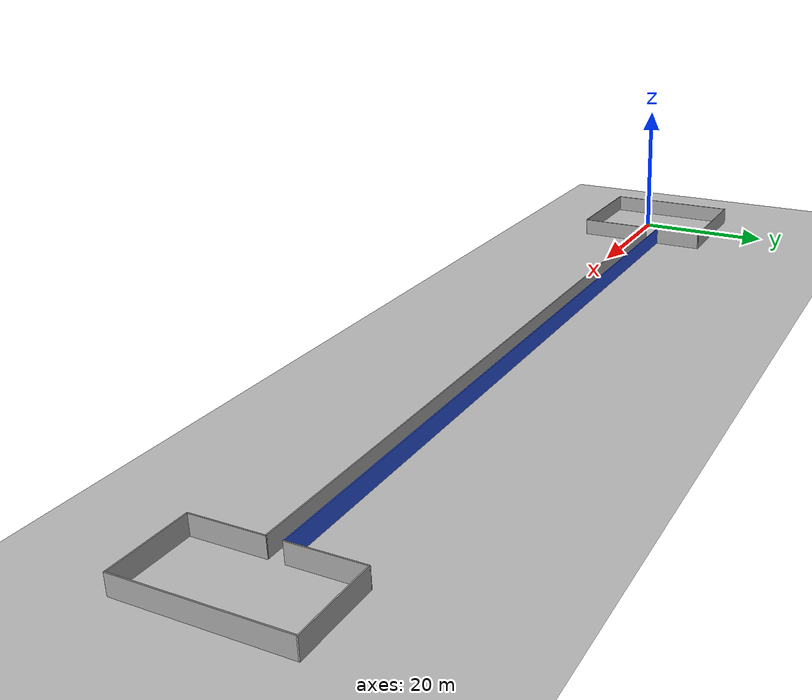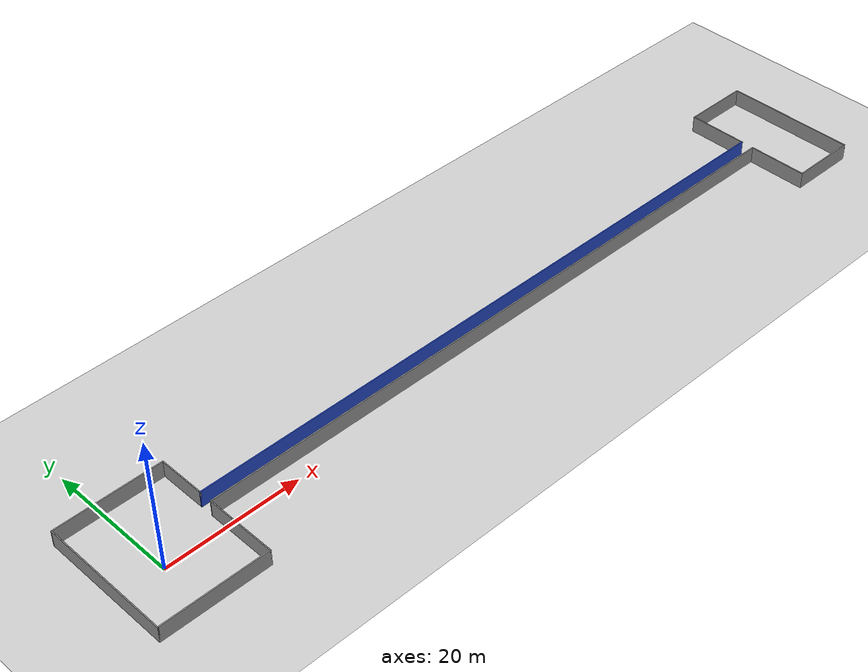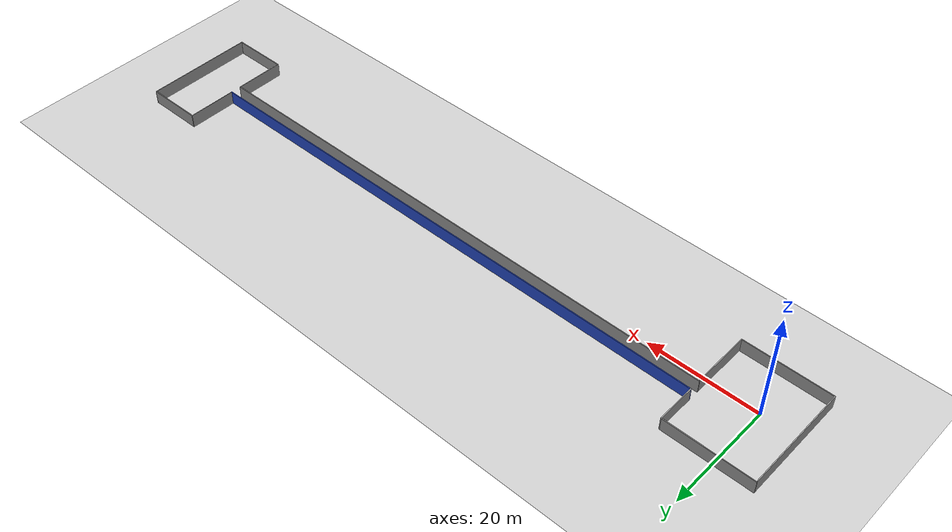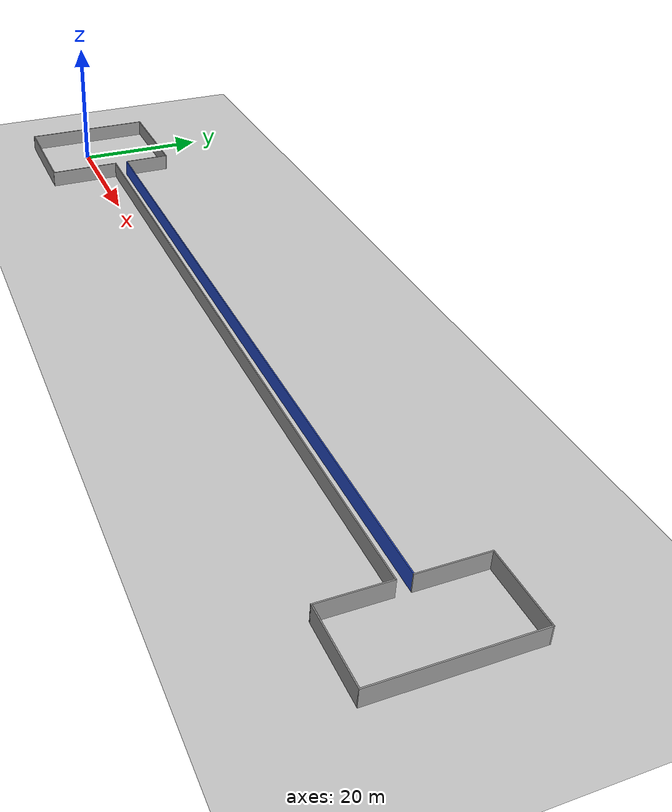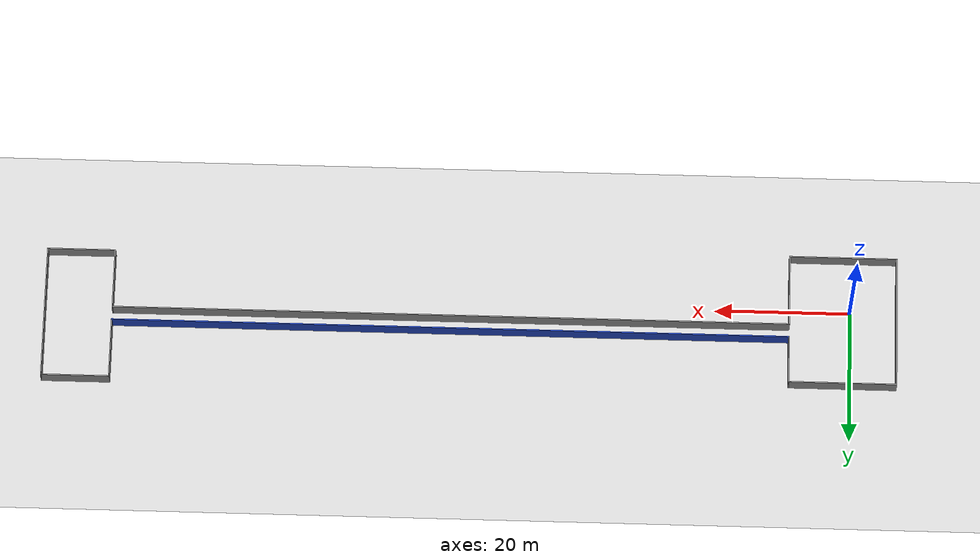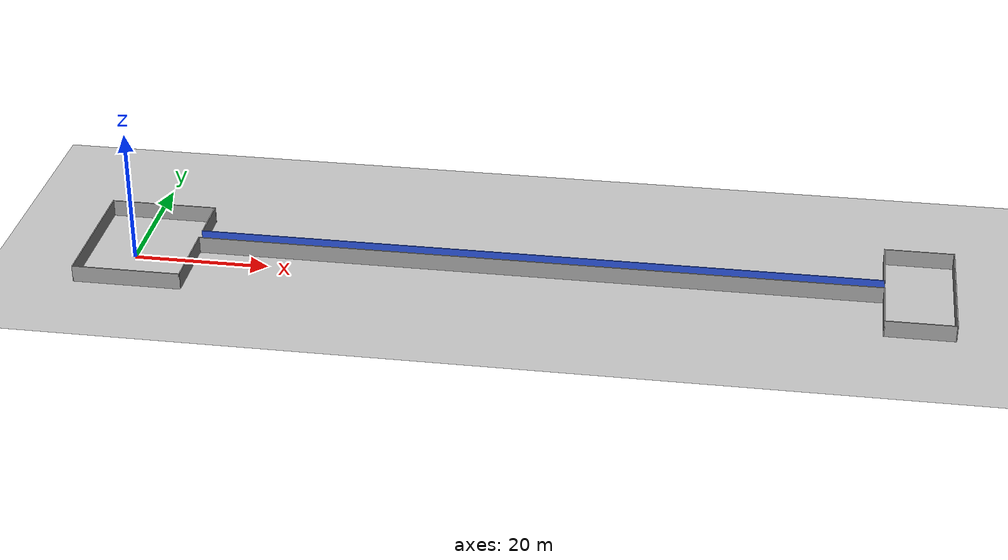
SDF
<sdf version="1.6">
 <world name="default">
  <light name="sun" type="directional">
   <pose>0 0 10 0 -0 0</pose>
   <diffuse>0.8 0.8 0.8 1</diffuse>
   <specular>0.2 0.2 0.2 1</specular>
   <attenuation>
    <range>1000</range>
    <constant>0.9</constant>
    <linear>0.01</linear>
    <quadratic>0.001</quadratic>
   </attenuation>
   <direction>-0.5 0.1 -0.9</direction>
  </light>
  <model name="ground_plane">
   <static>1</static>
   <link name="link">
    <collision name="collision">
     <geometry><plane><normal>0 0 1</normal><size>300 300</size></plane></geometry>
     <surface><friction><ode><mu>100</mu><mu2>50</mu2></ode></friction></surface>
    </collision>
    <visual name="visual">
     <cast_shadows>0</cast_shadows>
     <geometry><plane><normal>0 0 1</normal><size>300 300</size></plane></geometry>
     <material>
      <script><uri>file://media/materials/scripts/gazebo.material</uri><name>Gazebo/Grey</name></script>
     </material>
    </visual>
   </link>
  </model>
  <gravity>0 0 -9.8</gravity>
  <magnetic_field>6e-06 2.3e-05 -4.2e-05</magnetic_field>
  <atmosphere type="adiabatic"/>
  <physics name="default_physics" default="0" type="ode">
   <max_step_size>0.001</max_step_size>
   <real_time_factor>1</real_time_factor>
   <real_time_update_rate>1000</real_time_update_rate>
  </physics>
  <scene><ambient>0.4 0.4 0.4 1</ambient><background>0.7 0.7 0.7 1</background><shadows>1</shadows></scene>
  <spherical_coordinates>
   <surface_model>EARTH_WGS84</surface_model>
   <latitude_deg>0</latitude_deg>
   <longitude_deg>0</longitude_deg>
   <elevation>0</elevation>
   <heading_deg>0</heading_deg>
  </spherical_coordinates>
  <model name="Untitled">
   <pose>56.1162 2.80542 0 0 -0 0</pose>
   <link name="Wall_0">
    <collision name="Wall_0_Collision">
     <geometry><box><size>100.15 0.15 2.5</size></box></geometry>
     <pose>0 0 1.25 0 -0 0</pose>
    </collision>
    <visual name="Wall_0_Visual">
     <pose>0 0 1.25 0 -0 0</pose>
     <geometry><box><size>100.15 0.15 2.5</size></box></geometry>
     <material>
      <script><uri>file://media/materials/scripts/gazebo.material</uri><name>Gazebo/Blue</name></script>
      <ambient>1 1 1 1</ambient>
     </material>
     <meta><layer>0</layer></meta>
    </visual>
    <pose>2.925 1.875 0 0 -0 0</pose>
   </link>
   <link name="Wall_11">
    <collision name="Wall_11_Collision">
     <geometry><box><size>9.15 0.15 2.5</size></box></geometry>
     <pose>0 0 1.25 0 -0 0</pose>
    </collision>
    <visual name="Wall_11_Visual">
     <pose>0 0 1.25 0 -0 0</pose>
     <geometry><box><size>9.15 0.15 2.5</size></box></geometry>
     <material>
      <script><uri>file://media/materials/scripts/gazebo.material</uri><name>Gazebo/Grey</name></script>
      <ambient>1 1 1 1</ambient>
     </material>
     <meta><layer>0</layer></meta>
    </visual>
    <pose>52.925 6.375 0 0 -0 1.5708</pose>
   </link>
   <link name="Wall_13">
    <collision name="Wall_13_Collision">
     <geometry><box><size>9.15 0.15 2.5</size></box></geometry>
     <pose>0 0 1.25 0 -0 0</pose>
    </collision>
    <visual name="Wall_13_Visual">
     <pose>0 0 1.25 0 -0 0</pose>
     <geometry><box><size>9.15 0.15 2.5</size></box></geometry>
     <material>
      <script><uri>file://media/materials/scripts/gazebo.material</uri><name>Gazebo/Grey</name></script>
      <ambient>1 1 1 1</ambient>
     </material>
     <meta><layer>0</layer></meta>
    </visual>
    <pose>52.925 -4.625 0 0 0 -1.5708</pose>
   </link>
   <link name="Wall_15">
    <collision name="Wall_15_Collision">
     <geometry><box><size>10.15 0.15 2.5</size></box></geometry>
     <pose>0 0 1.25 0 -0 0</pose>
    </collision>
    <visual name="Wall_15_Visual">
     <pose>0 0 1.25 0 -0 0</pose>
     <geometry><box><size>10.15 0.15 2.5</size></box></geometry>
     <material>
      <script><uri>file://media/materials/scripts/gazebo.material</uri><name>Gazebo/Grey</name></script>
      <ambient>1 1 1 1</ambient>
     </material>
     <meta><layer>0</layer></meta>
    </visual>
    <pose>57.925 10.875 0 0 -0 0</pose>
   </link>
   <link name="Wall_17">
    <collision name="Wall_17_Collision">
     <geometry><box><size>10.15 0.15 2.5</size></box></geometry>
     <pose>0 0 1.25 0 -0 0</pose>
    </collision>
    <visual name="Wall_17_Visual">
     <pose>0 0 1.25 0 -0 0</pose>
     <geometry><box><size>10.15 0.15 2.5</size></box></geometry>
     <material>
      <script><uri>file://media/materials/scripts/gazebo.material</uri><name>Gazebo/Grey</name></script>
      <ambient>1 1 1 1</ambient>
     </material>
     <meta><layer>0</layer></meta>
    </visual>
    <pose>57.925 -9.125 0 0 -0 0</pose>
   </link>
   <link name="Wall_19">
    <collision name="Wall_19_Collision">
     <geometry><box><size>20.15 0.15 2.5</size></box></geometry>
     <pose>0 0 1.25 0 -0 0</pose>
    </collision>
    <visual name="Wall_19_Visual">
     <pose>0 0 1.25 0 -0 0</pose>
     <geometry><box><size>20.15 0.15 2.5</size></box></geometry>
     <material>
      <script><uri>file://media/materials/scripts/gazebo.material</uri><name>Gazebo/Grey</name></script>
      <ambient>1 1 1 1</ambient>
     </material>
     <meta><layer>0</layer></meta>
    </visual>
    <pose>62.925 0.875 0 0 -0 1.5708</pose>
   </link>
   <link name="Wall_2">
    <collision name="Wall_2_Collision">
     <geometry><box><size>100.15 0.15 2.5</size></box></geometry>
     <pose>0 0 1.25 0 -0 0</pose>
    </collision>
    <visual name="Wall_2_Visual">
     <pose>0 0 1.25 0 -0 0</pose>
     <geometry><box><size>100.15 0.15 2.5</size></box></geometry>
     <material>
      <script><uri>file://media/materials/scripts/gazebo.material</uri><name>Gazebo/Grey</name></script>
      <ambient>1 1 1 1</ambient>
     </material>
     <meta><layer>0</layer></meta>
    </visual>
    <pose>2.925 -0.125 0 0 -0 0</pose>
   </link>
   <link name="Wall_5">
    <collision name="Wall_5_Collision">
     <geometry><box><size>7.25 0.15 2.5</size></box></geometry>
     <pose>0 0 1.25 0 -0 0</pose>
    </collision>
    <visual name="Wall_5_Visual">
     <pose>0 0 1.25 0 -0 0</pose>
     <geometry><box><size>7.25 0.15 2.5</size></box></geometry>
     <material>
      <script><uri>file://media/materials/scripts/gazebo.material</uri><name>Gazebo/Grey</name></script>
      <ambient>1 1 1 1</ambient>
     </material>
     <meta><layer>0</layer></meta>
    </visual>
    <pose>-47.075 5.425 0 0 -0 1.5708</pose>
   </link>
   <link name="Wall_6">
    <collision name="Wall_6_Collision">
     <geometry><box><size>16 0.15 2.5</size></box></geometry>
     <pose>0 0 1.25 0 -0 0</pose>
    </collision>
    <visual name="Wall_6_Visual">
     <pose>0 0 1.25 0 -0 0</pose>
     <geometry><box><size>16 0.15 2.5</size></box></geometry>
     <material>
      <script><uri>file://media/materials/scripts/gazebo.material</uri><name>Gazebo/Grey</name></script>
      <ambient>1 1 1 1</ambient>
     </material>
     <meta><layer>0</layer></meta>
    </visual>
    <pose>-55 8.975 0 0 -0 3.14159</pose>
   </link>
   <link name="Wall_7">
    <collision name="Wall_7_Collision">
     <geometry><box><size>20 0.15 2.5</size></box></geometry>
     <pose>0 0 1.25 0 -0 0</pose>
    </collision>
    <visual name="Wall_7_Visual">
     <pose>0 0 1.25 0 -0 0</pose>
     <geometry><box><size>20 0.15 2.5</size></box></geometry>
     <material>
      <script><uri>file://media/materials/scripts/gazebo.material</uri><name>Gazebo/Grey</name></script>
      <ambient>1 1 1 1</ambient>
     </material>
     <meta><layer>0</layer></meta>
    </visual>
    <pose>-62.925 -0.95 0 0 0 -1.5708</pose>
   </link>
   <link name="Wall_8">
    <collision name="Wall_8_Collision">
     <geometry><box><size>16 0.15 2.5</size></box></geometry>
     <pose>0 0 1.25 0 -0 0</pose>
    </collision>
    <visual name="Wall_8_Visual">
     <pose>0 0 1.25 0 -0 0</pose>
     <geometry><box><size>16 0.15 2.5</size></box></geometry>
     <material>
      <script><uri>file://media/materials/scripts/gazebo.material</uri><name>Gazebo/Grey</name></script>
      <ambient>1 1 1 1</ambient>
     </material>
     <meta><layer>0</layer></meta>
    </visual>
    <pose>-55 -10.875 0 0 -0 0</pose>
   </link>
   <link name="Wall_9">
    <collision name="Wall_9_Collision">
     <geometry><box><size>10.75 0.15 2.5</size></box></geometry>
     <pose>0 0 1.25 0 -0 0</pose>
    </collision>
    <visual name="Wall_9_Visual">
     <pose>0 0 1.25 0 -0 0</pose>
     <geometry><box><size>10.75 0.15 2.5</size></box></geometry>
     <material>
      <script><uri>file://media/materials/scripts/gazebo.material</uri><name>Gazebo/Grey</name></script>
      <ambient>1 1 1 1</ambient>
     </material>
     <meta><layer>0</layer></meta>
    </visual>
    <pose>-47.075 -5.575 0 0 -0 1.5708</pose>
   </link>
   <static>1</static>
  </model>
 </world>
</sdf>
